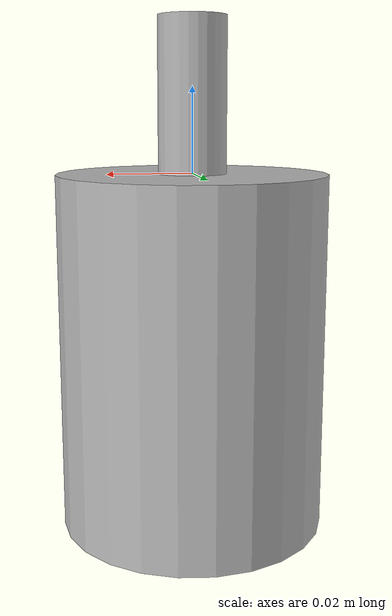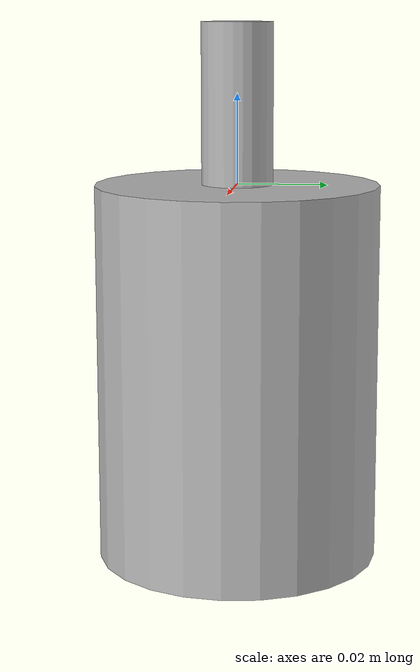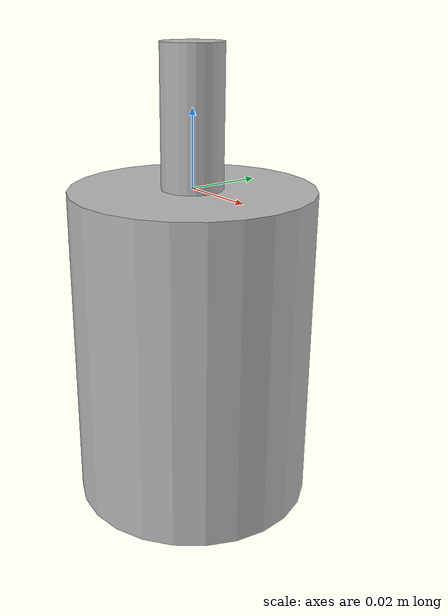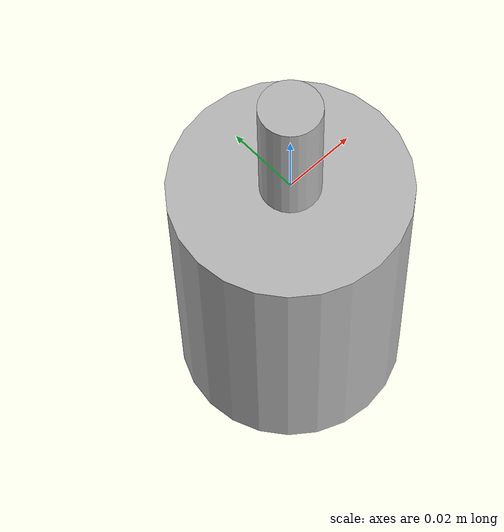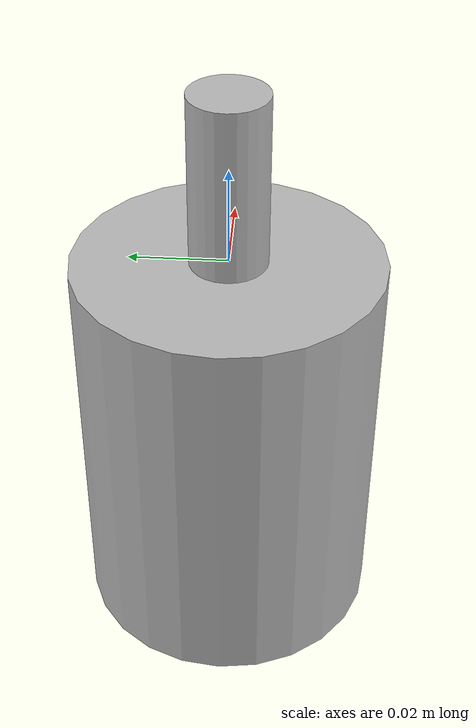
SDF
<?xml version='1.0'?>

<sdf version='1.6'>
    <model name="Mini_CIM">
        <link name="motor">
            <pose>0 0 -0.042671999999999995 0 0 0</pose>
            <collision name="motor_collision">
                <geometry>
                    <cylinder>
                        <radius>0.03175</radius>
                        <length>0.08534399999999999</length>
                    </cylinder>
                </geometry>
            </collision>
            <visual name="motor_visual">
                <geometry>
                    <cylinder>
                        <radius>0.03175</radius>
                        <length>0.08534399999999999</length>
                    </cylinder>
                </geometry>
            </visual>
        </link>
        <link name="motor_shaft">
            <pose>0 0 0.0178 0 0 0</pose>
            <collision name="motor_shaft_collision">
                <geometry>
                    <cylinder>
                        <radius>0.008</radius>
                        <length>0.0356</length>
                    </cylinder>
                </geometry>
            </collision>
            <visual name="motor_shaft_visual">
                <geometry>
                    <cylinder>
                        <radius>0.008</radius>
                        <length>0.0356</length>
                    </cylinder>
                </geometry>
            </visual>
        </link>
        <joint name="motor_shaft_to_motor" type="revolute">
            <pose>0 0 -0.0178 0 0 0</pose>
            <child>motor_shaft</child>
            <parent>motor</parent>
            <axis>
                <use_parent_model_frame>true</use_parent_model_frame>
                <xyz>0.0 0.0 1.0</xyz>
            </axis>
        </joint>
    </model>
</sdf>
